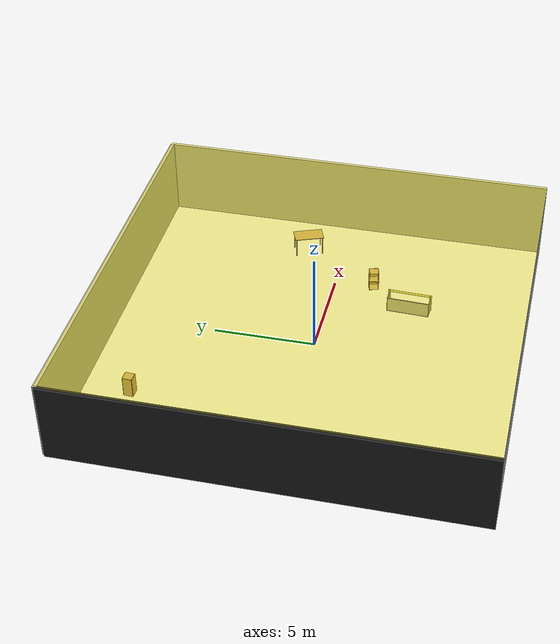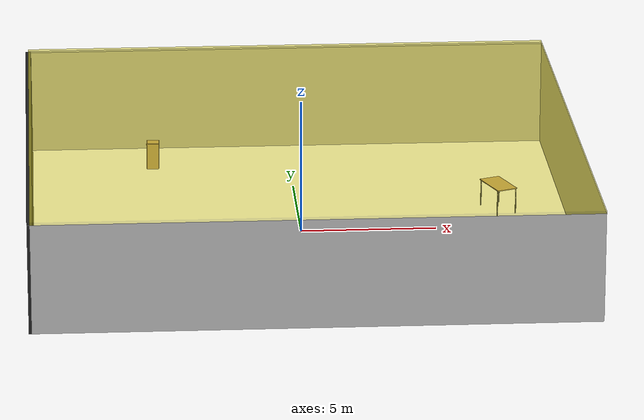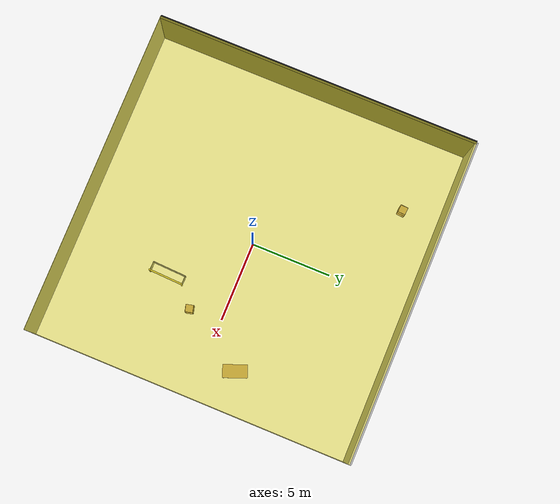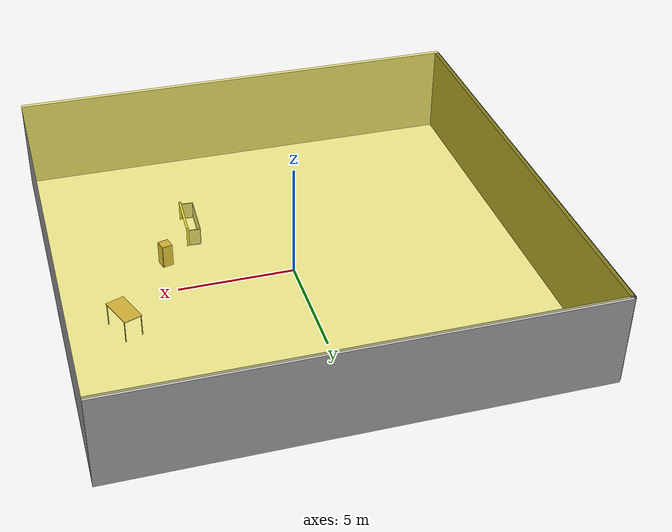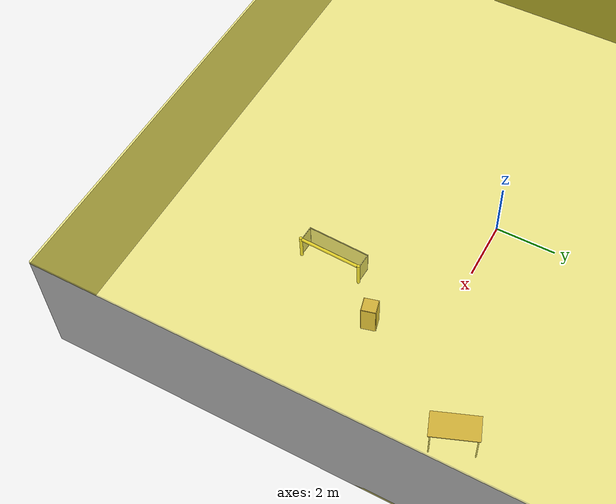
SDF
<sdf version="1.4">
 <world name="default">
  <physics type="ode">
   <max_step_size>0.001</max_step_size>
   <real_time_factor>1</real_time_factor>
   <real_time_update_rate>1000</real_time_update_rate>
   <gravity>0 0 -9.8</gravity>
  </physics>
  <scene><ambient>0.4 0.4 0.4 1</ambient><background>0.7 0.7 0.7 1</background><shadows>1</shadows></scene>
  <model name="Surrounding">
   <static>1</static>
   <link name="Ceiling">
    <collision name="Ceiling_Collision"><geometry><box><size>20 20 0.1</size></box></geometry></collision>
    <visual name="Ceiling_Visual">
     <geometry><box><size>20 20 0.1</size></box></geometry>
     <material>
      <script>
       <uri>file://media/materials/scripts/gazebo.material</uri>
       <name>Gazebo/YellowTransparent</name>
      </script>
     </material>
    </visual>
    <pose>0 0 4.05 0 0 0</pose>
   </link>
   <link name="Wall_South">
    <collision name="Wall_South_Collision">
     <geometry><box><size>20 0 4</size></box></geometry>
     <pose>0 0 2 0 -0 0</pose>
    </collision>
    <visual name="Wall_South_Visual">
     <pose>0 0 2 0 -0 0</pose>
     <geometry><box><size>20 0 4</size></box></geometry>
     <material>
      <script><uri>file://media/materials/scripts/gazebo.material</uri><name>Gazebo/LightOn</name></script>
     </material>
    </visual>
    <velocity_decay><linear>0</linear><angular>0</angular></velocity_decay>
    <pose>0 -10 0 0 -0 0</pose>
   </link>
   <link name="Wall_East">
    <collision name="Wall_21_Collision">
     <geometry><box><size>20 0 4</size></box></geometry>
     <pose>0 0 2 0 -0 0</pose>
    </collision>
    <visual name="Wall_21_Visual">
     <pose>0 0 2 0 -0 0</pose>
     <geometry><box><size>20 0 4</size></box></geometry>
     <material>
      <script><uri>file://media/materials/scripts/gazebo.material</uri><name>Gazebo/LightOff</name></script>
     </material>
    </visual>
    <velocity_decay><linear>0</linear><angular>0</angular></velocity_decay>
    <pose>10 0 0 0 -0 1.5708</pose>
   </link>
   <link name="Wall_North">
    <collision name="Wall_22_Collision">
     <geometry><box><size>20 0.2 4</size></box></geometry>
     <pose>0 0 2 0 -0 0</pose>
    </collision>
    <visual name="Wall_22_Visual">
     <pose>0 0 2 0 -0 0</pose>
     <geometry><box><size>20 0.2 4</size></box></geometry>
     <material>
      <script><uri>file://media/materials/scripts/gazebo.material</uri><name>Gazebo/Pioneer2Body</name></script>
     </material>
    </visual>
    <velocity_decay><linear>0</linear><angular>0</angular></velocity_decay>
    <pose>0 10 0 0 -0 0</pose>
   </link>
   <link name="Wall_West">
    <collision name="Wall_23_Collision">
     <geometry><box><size>20 0.2 4</size></box></geometry>
     <pose>0 0 2 0 -0 0</pose>
    </collision>
    <visual name="Wall_23_Visual">
     <pose>0 0 2 0 -0 0</pose>
     <geometry><box><size>20 0.2 4</size></box></geometry>
     <material>
      <script><uri>file://media/materials/scripts/gazebo.material</uri><name>Gazebo/FlatBlack</name></script>
     </material>
    </visual>
    <velocity_decay><linear>0</linear><angular>0</angular></velocity_decay>
    <pose>-10 0 0 0 0 -1.5708</pose>
   </link>
   <link name="Ground_link">
    <collision name="collision">
     <pose>0 0 .05 0 -0 0</pose>
     <geometry><box><size>20 20 0.1</size></box></geometry>
    </collision>
    <visual name="visual">
     <pose>0 0 .05 0 -0 0</pose>
     <geometry><box><size>20 20 0.1</size></box></geometry>
     <material>
      <script>
       <uri>file://media/materials/scripts/gazebo.material</uri>
       <name>Gazebo/YellowTransparent</name>
      </script>
     </material>
    </visual>
   </link>
   <static>1</static>
  </model>
  <spherical_coordinates>
   <surface_model>EARTH_WGS84</surface_model>
   <latitude_deg>0</latitude_deg>
   <longitude_deg>0</longitude_deg>
   <elevation>0</elevation>
   <heading_deg>0</heading_deg>
  </spherical_coordinates>
  <light name="lightball_0" type="diffuse">
   <diffuse>0.8 0.8 0.8 1</diffuse>
   <specular>0.2 0.2 0.2 1</specular>
   <attenuation>
    <range>100</range>
    <constant>0.7</constant>
    <linear>0.01</linear>
    <quadratic>0.001</quadratic>
   </attenuation>
   <direction>-0.5 0.1 -0.9</direction>
   <pose>-7.53607266806 -2.86923423839 1.67998593111 0 0 0</pose>
  </light>
  <light name="lightball_1" type="diffuse">
   <diffuse>0.8 0.8 0.8 1</diffuse>
   <specular>0.2 0.2 0.2 1</specular>
   <attenuation>
    <range>100</range>
    <constant>0.7</constant>
    <linear>0.01</linear>
    <quadratic>0.001</quadratic>
   </attenuation>
   <direction>-0.5 0.1 -0.9</direction>
   <pose>5.82764236781 -8.11562293672 3.76899380629 0 0 0</pose>
  </light>
  <light name="lightball_2" type="diffuse">
   <diffuse>0.8 0.8 0.8 1</diffuse>
   <specular>0.2 0.2 0.2 1</specular>
   <attenuation>
    <range>100</range>
    <constant>0.7</constant>
    <linear>0.01</linear>
    <quadratic>0.001</quadratic>
   </attenuation>
   <direction>-0.5 0.1 -0.9</direction>
   <pose>-8.65499809501 9.9081635933 0.650746678435 0 0 0</pose>
  </light>
  <light name="lightball_3" type="diffuse">
   <diffuse>0.8 0.8 0.8 1</diffuse>
   <specular>0.2 0.2 0.2 1</specular>
   <attenuation>
    <range>100</range>
    <constant>0.7</constant>
    <linear>0.01</linear>
    <quadratic>0.001</quadratic>
   </attenuation>
   <direction>-0.5 0.1 -0.9</direction>
   <pose>-3.50974893104 7.06541142066 3.44259221274 0 0 0</pose>
  </light>
  <light name="lightball_4" type="diffuse">
   <diffuse>0.8 0.8 0.8 1</diffuse>
   <specular>0.2 0.2 0.2 1</specular>
   <attenuation>
    <range>100</range>
    <constant>0.7</constant>
    <linear>0.01</linear>
    <quadratic>0.001</quadratic>
   </attenuation>
   <direction>-0.5 0.1 -0.9</direction>
   <pose>-4.8761027512 7.85468580437 2.87800294832 0 0 0</pose>
  </light>
  <light name="lightball_5" type="diffuse">
   <diffuse>0.8 0.8 0.8 1</diffuse>
   <specular>0.2 0.2 0.2 1</specular>
   <attenuation>
    <range>100</range>
    <constant>0.7</constant>
    <linear>0.01</linear>
    <quadratic>0.001</quadratic>
   </attenuation>
   <direction>-0.5 0.1 -0.9</direction>
   <pose>-9.66378893258 -6.89584058632 1.63868812953 0 0 0</pose>
  </light>
  <light name="lightball_6" type="diffuse">
   <diffuse>0.8 0.8 0.8 1</diffuse>
   <specular>0.2 0.2 0.2 1</specular>
   <attenuation>
    <range>100</range>
    <constant>0.7</constant>
    <linear>0.01</linear>
    <quadratic>0.001</quadratic>
   </attenuation>
   <direction>-0.5 0.1 -0.9</direction>
   <pose>5.30230322427 1.02939090182 3.31318737647 0 0 0</pose>
  </light>
  <light name="lightball_7" type="diffuse">
   <diffuse>0.8 0.8 0.8 1</diffuse>
   <specular>0.2 0.2 0.2 1</specular>
   <attenuation>
    <range>100</range>
    <constant>0.7</constant>
    <linear>0.01</linear>
    <quadratic>0.001</quadratic>
   </attenuation>
   <direction>-0.5 0.1 -0.9</direction>
   <pose>-2.6663301951 -9.11147647599 2.80429219335 0 0 0</pose>
  </light>
  <light name="lightball_8" type="diffuse">
   <diffuse>0.8 0.8 0.8 1</diffuse>
   <specular>0.2 0.2 0.2 1</specular>
   <attenuation>
    <range>100</range>
    <constant>0.7</constant>
    <linear>0.01</linear>
    <quadratic>0.001</quadratic>
   </attenuation>
   <direction>-0.5 0.1 -0.9</direction>
   <pose>-2.42451663706 2.78979702126 2.22698880281 0 0 0</pose>
  </light>
  <light name="lightball_9" type="diffuse">
   <diffuse>0.8 0.8 0.8 1</diffuse>
   <specular>0.2 0.2 0.2 1</specular>
   <attenuation>
    <range>100</range>
    <constant>0.7</constant>
    <linear>0.01</linear>
    <quadratic>0.001</quadratic>
   </attenuation>
   <direction>-0.5 0.1 -0.9</direction>
   <pose>-6.20457191017 7.38297697391 3.6076538104 0 0 0</pose>
  </light>
  <light name="lightball_10" type="diffuse">
   <diffuse>0.8 0.8 0.8 1</diffuse>
   <specular>0.2 0.2 0.2 1</specular>
   <attenuation>
    <range>100</range>
    <constant>0.7</constant>
    <linear>0.01</linear>
    <quadratic>0.001</quadratic>
   </attenuation>
   <direction>-0.5 0.1 -0.9</direction>
   <pose>-4.56351632506 9.62610810372 2.90523770261 0 0 0</pose>
  </light>
  <light name="lightball_11" type="diffuse">
   <diffuse>0.8 0.8 0.8 1</diffuse>
   <specular>0.2 0.2 0.2 1</specular>
   <attenuation>
    <range>100</range>
    <constant>0.7</constant>
    <linear>0.01</linear>
    <quadratic>0.001</quadratic>
   </attenuation>
   <direction>-0.5 0.1 -0.9</direction>
   <pose>5.49593173498 0.342262881094 2.23530245346 0 0 0</pose>
  </light>
  <light name="lightball_12" type="diffuse">
   <diffuse>0.8 0.8 0.8 1</diffuse>
   <specular>0.2 0.2 0.2 1</specular>
   <attenuation>
    <range>100</range>
    <constant>0.7</constant>
    <linear>0.01</linear>
    <quadratic>0.001</quadratic>
   </attenuation>
   <direction>-0.5 0.1 -0.9</direction>
   <pose>-4.01341982071 -2.88819573479 3.64028172025 0 0 0</pose>
  </light>
  <include><uri>model://cabinet</uri><pose>-5.26373339918 7.62064961238 0 0 0 3.08076907863</pose></include>
  <include>
   <uri>model://robocup_3Dsim_goal</uri>
   <pose>3.90930455542 -4.05191004719 0 0 0 3.10035668821</pose>
  </include>
  <include><uri>model://cabinet</uri><pose>5.12061019023 -1.98386823475 0 0 0 0.25243485065</pose></include>
  <include><uri>model://table</uri><pose>7.52492542993 1.96205086271 0 0 0 1.93900607488</pose></include>
 </world>
</sdf>

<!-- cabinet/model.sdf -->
<sdf version="1.5">
  <model name="cabinet">
    <static>true</static>
    <link name="cabinet_bottom_plate">
      <inertial>
        <pose>0 0 -1 0 0 0</pose>
        <inertia>
          <ixx>2.050000</ixx>
          <ixy>0</ixy>
          <ixz>0</ixz>
          <iyy>2.050000</iyy>
          <iyz>0</iyz>
          <izz>2.050000</izz>
        </inertia>
        <mass>25.000000</mass>
      </inertial>
      <collision name="cabinet_bottom_plate_geom">
        <pose>0 0 0.010000 0 0 0</pose>
        <geometry>
          <box>
            <size>0.450000 0.450000 0.020000</size>
          </box>
        </geometry>
      </collision>
      <visual name="cabinet_bottom_plate_geom_visual">
        <pose>0 0 0.010000 0 0 0</pose>
        <geometry>
          <box>
            <size>0.450000 0.450000 0.020000</size>
          </box>
        </geometry>
        <material>
          <script>
            <uri>model://media/materials/scripts/gazebo.material</uri>
            <name>Gazebo/Wood</name>
          </script>
        </material>
      </visual>
      <collision name="cabinet_bottom_plate_geom_cabinet_back_plate">
        <pose>0.235000 0 0.510000 0 0 0</pose>
        <geometry>
          <box>
            <size>0.020000 0.450000 1.020000</size>
          </box>
        </geometry>
      </collision>
      <visual name="cabinet_bottom_plate_geom_cabinet_back_plate_visual">
        <pose>0.235000 0 0.510000 0 0 0</pose>
        <geometry>
          <box>
            <size>0.020000 0.450000 1.020000</size>
          </box>
        </geometry>
        <material>
          <script>
            <uri>model://media/materials/scripts/gazebo.material</uri>
            <name>Gazebo/Wood</name>
          </script>
        </material>
      </visual>
      <collision name="cabinet_bottom_plate_geom_cabinet_left_plate">
        <pose>0 0.235000 0.510000 0 0 0</pose>
        <geometry>
          <box>
            <size>0.450000 0.020000 1.020000</size>
          </box>
        </geometry>
      </collision>
      <visual name="cabinet_bottom_plate_geom_cabinet_left_plate_visual">
        <pose>0 0.235000 0.510000 0 0 0</pose>
        <geometry>
          <box>
            <size>0.450000 0.020000 1.020000</size>
          </box>
        </geometry>
        <material>
          <script>
            <uri>model://media/materials/scripts/gazebo.material</uri>
            <name>Gazebo/Wood</name>
          </script>
        </material>
      </visual>
      <collision name="cabinet_bottom_plate_geom_cabinet_middle_plate">
        <pose>0 0 0.510000 0 0 0</pose>
        <geometry>
          <box>
            <size>0.450000 0.450000 0.020000</size>
          </box>
        </geometry>
      </collision>
      <visual name="cabinet_bottom_plate_geom_cabinet_middle_plate_visual">
        <pose>0 0 0.510000 0 0 0</pose>
        <geometry>
          <box>
            <size>0.450000 0.450000 0.020000</size>
          </box>
        </geometry>
        <material>
          <script>
            <uri>model://media/materials/scripts/gazebo.material</uri>
            <name>Gazebo/Wood</name>
          </script>
        </material>
      </visual>
      <collision name="cabinet_bottom_plate_geom_cabinet_right_plate">
        <pose>0 -0.235000 0.510000 0 0 0</pose>
        <geometry>
          <box>
            <size>0.450000 0.020000 1.020000</size>
          </box>
        </geometry>
      </collision>
      <visual name="cabinet_bottom_plate_geom_cabinet_right_plate_visual">
        <pose>0 -0.235000 0.510000 0 0 0</pose>
        <geometry>
          <box>
            <size>0.450000 0.020000 1.020000</size>
          </box>
        </geometry>
        <material>
          <script>
            <uri>model://media/materials/scripts/gazebo.material</uri>
            <name>Gazebo/Wood</name>
          </script>
        </material>
      </visual>
      <collision name="cabinet_bottom_plate_geom_cabinet_top_plate">
        <pose>0 0 1.010000 0 0 0</pose>
        <geometry>
          <box>
            <size>0.450000 0.450000 0.020000</size>
          </box>
        </geometry>
      </collision>
      <visual name="cabinet_bottom_plate_geom_cabinet_top_plate_visual">
        <pose>0 0 1.010000 0 0 0</pose>
        <geometry>
          <box>
            <size>0.450000 0.450000 0.020000</size>
          </box>
        </geometry>
        <material>
          <script>
            <uri>model://media/materials/scripts/gazebo.material</uri>
            <name>Gazebo/Wood</name>
          </script>
        </material>
      </visual>
    </link>
  </model>
</sdf>

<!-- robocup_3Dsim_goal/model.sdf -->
<sdf version="1.5">
  <model name="robocup_3d_goal">
    <static>true</static>
    <link name="left_post">
      <pose>0 1.05 0.45 0 0 0</pose>
      <collision name="collision">
        <geometry>
          <cylinder>
            <radius>0.05</radius>
            <length>0.9</length>
          </cylinder>
        </geometry>
      </collision>
      <visual name="visual">
        <geometry>
          <cylinder>
            <radius>0.05</radius>
            <length>0.9</length>
          </cylinder>
        </geometry>
        <material>
          <script>
            <uri>file://media/materials/scripts/gazebo.material</uri>
            <name>Gazebo/ZincYellow</name>
          </script>
        </material>
      </visual>
    </link>
    <link name="left_support_horiz_lower">
      <pose>0.30 1.05 0.01 0 0 0</pose>
      <collision name="collision">
        <geometry>
          <box>
            <size>0.50 0.02 0.02</size>
          </box>
        </geometry>
      </collision>
      <visual name="visual">
        <geometry>
          <box>
            <size>0.50 0.02 0.02</size>
          </box>
        </geometry>
        <material>
          <script>
            <uri>file://media/materials/scripts/gazebo.material</uri>
            <name>Gazebo/White</name>
          </script>
        </material>
      </visual>
    </link>
    <link name="left_support_horiz_upper">
      <pose>0.30 1.05 0.79 0 0 0</pose>
      <collision name="collision">
        <geometry>
          <box>
            <size>0.50 0.02 0.02</size>
          </box>
        </geometry>
      </collision>
      <visual name="visual">
        <geometry>
          <box>
            <size>0.50 0.02 0.02</size>
          </box>
        </geometry>
        <material>
          <script>
            <uri>file://media/materials/scripts/gazebo.material</uri>
            <name>Gazebo/White</name>
          </script>
        </material>
      </visual>
    </link>
    <link name="left_support_vertical">
      <pose>0.56 1.05 0.4 0 1.5708 0</pose>
      <collision name="collision">
        <geometry>
          <box>
            <size>0.80 0.02 0.02</size>
          </box>
        </geometry>
      </collision>
      <visual name="visual">
        <geometry>
          <box>
            <size>0.80 0.02 0.02</size>
          </box>
        </geometry>
        <material>
          <script>
            <uri>file://media/materials/scripts/gazebo.material</uri>
            <name>Gazebo/White</name>
          </script>
        </material>
      </visual>
    </link>
    <link name="right_support_horiz_lower">
      <pose>0.30 -1.05 0.01 0 0 0</pose>
      <collision name="collision">
        <geometry>
          <box>
            <size>0.50 0.02 0.02</size>
          </box>
        </geometry>
      </collision>
      <visual name="visual">
        <geometry>
          <box>
            <size>0.50 0.02 0.02</size>
          </box>
        </geometry>
        <material>
          <script>
            <uri>file://media/materials/scripts/gazebo.material</uri>
            <name>Gazebo/White</name>
          </script>
        </material>
      </visual>
    </link>
    <link name="right_support_horiz_upper">
      <pose>0.30 -1.05 0.79 0 0 0</pose>
      <collision name="collision">
        <geometry>
          <box>
            <size>0.50 0.02 0.02</size>
          </box>
        </geometry>
      </collision>
      <visual name="visual">
        <geometry>
          <box>
            <size>0.50 0.02 0.02</size>
          </box>
        </geometry>
        <material>
          <script>
            <uri>file://media/materials/scripts/gazebo.material</uri>
            <name>Gazebo/White</name>
          </script>
        </material>
      </visual>
    </link>
    <link name="right_support_vertical">
      <pose>0.56 -1.05 0.4 0 1.5708 0</pose>
      <collision name="collision">
        <geometry>
          <box>
            <size>0.80 0.02 0.02</size>
          </box>
        </geometry>
      </collision>
      <visual name="visual">
        <geometry>
          <box>
            <size>0.80 0.02 0.02</size>
          </box>
        </geometry>
        <material>
          <script>
            <uri>file://media/materials/scripts/gazebo.material</uri>
            <name>Gazebo/White</name>
          </script>
        </material>
      </visual>
    </link>
    <link name="center_support_horiz_lower">
      <pose>0.56 0 0.01 0 1.5708 0</pose>
      <collision name="collision">
        <geometry>
          <box>
            <size>0.02 2.08 0.02</size>
          </box>
        </geometry>
      </collision>
      <visual name="visual">
        <geometry>
          <box>
            <size>0.02 2.08 0.02</size>
          </box>
        </geometry>
        <material>
          <script>
            <uri>file://media/materials/scripts/gazebo.material</uri>
            <name>Gazebo/White</name>
          </script>
        </material>
      </visual>
    </link>
    <link name="center_support_horiz_upper">
      <pose>0.56 0 0.79 0 1.5708 0</pose>
      <collision name="collision">
        <geometry>
          <box>
            <size>0.02 2.08 0.02</size>
          </box>
        </geometry>
      </collision>
      <visual name="visual">
        <geometry>
          <box>
            <size>0.02 2.08 0.02</size>
          </box>
        </geometry>
        <material>
          <script>
            <uri>file://media/materials/scripts/gazebo.material</uri>
            <name>Gazebo/White</name>
          </script>
        </material>
      </visual>
    </link>
    <link name="right_post">
      <pose>0 -1.05 0.45 0 0 0</pose>
      <collision name="collision">
        <geometry>
          <cylinder>
            <radius>0.05</radius>
            <length>0.9</length>
          </cylinder>
        </geometry>
      </collision>
      <visual name="visual">
        <geometry>
          <cylinder>
            <radius>0.05</radius>
            <length>0.9</length>
          </cylinder>
        </geometry>
        <material>
          <script>
            <uri>file://media/materials/scripts/gazebo.material</uri>
            <name>Gazebo/ZincYellow</name>
          </script>
        </material>
      </visual>
    </link>
    <link name="crossbar">
      <pose>0 0 0.85 1.57 1.57 0</pose>
      <collision name="collision">
        <geometry>
          <cylinder>
            <radius>0.05</radius>
            <length>2.0</length>
          </cylinder>
        </geometry>
      </collision>
      <visual name="visual">
        <geometry>
          <cylinder>
            <radius>0.05</radius>
            <length>2.0</length>
          </cylinder>
        </geometry>
        <material>
          <script>
            <uri>file://media/materials/scripts/gazebo.material</uri>
            <name>Gazebo/ZincYellow</name>
          </script>
        </material>
      </visual>
    </link>
    <link name="center_net">
      <pose>0.56 0 0.40 0 0 0</pose>
      <collision name="collision">
        <geometry>
          <box>
            <size>0.01 2.1 0.80</size>
          </box>
        </geometry>
      </collision>
      <visual name="visual">
        <geometry>
          <box>
            <size>0.01 2.1 0.80</size>
          </box>
        </geometry>
        <material>
          <script>
            <uri>model://../model_source/models/robocup09_spl_field/materials/scripts/</uri>
            <uri>model://../model_source/models/robocup09_spl_field/materials/textures/</uri>
            <name>RoboCup/Net</name>
          </script>
        </material>
      </visual>
    </link>
    <link name="left_net">
      <pose>0.30 1.05 0.40 0 0 0</pose>
      <collision name="collision">
        <geometry>
          <box>
            <size>0.50 0.01 0.76</size>
          </box>
        </geometry>
      </collision>
      <visual name="visual">
        <geometry>
          <box>
            <size>0.50 0.01 0.76</size>
          </box>
        </geometry>
        <material>
          <script>
            <uri>model://../model_source/models/robocup09_spl_field/materials/scripts/</uri>
            <uri>model://../model_source/models/robocup09_spl_field/materials/textures/</uri>
            <name>RoboCup/Net</name>
          </script>
        </material>
      </visual>
    </link>
    <link name="right_net">
      <pose>0.30 -1.05 0.40 0 0 0</pose>
      <collision name="collision">
        <geometry>
          <box>
            <size>0.50 0.01 0.76</size>
          </box>
        </geometry>
      </collision>
      <visual name="visual">
        <geometry>
          <box>
            <size>0.50 0.01 0.76</size>
          </box>
        </geometry>
        <material>
          <script>
            <uri>model://../model_source/models/robocup09_spl_field/materials/scripts/</uri>
            <uri>model://../model_source/models/robocup09_spl_field/materials/textures/</uri>
            <name>RoboCup/Net</name>
          </script>
        </material>
      </visual>
    </link>
  </model>
</sdf>

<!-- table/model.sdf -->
<sdf version="1.5">
  <model name="table">
    <static>true</static>
    <link name="link">
      <collision name="surface">
        <pose>0 0 1.0 0 0 0</pose>
        <geometry>
          <box>
            <size>1.5 0.8 0.03</size>
          </box>
        </geometry>
        <surface>
          <friction>
            <ode>
              <mu>0.6</mu>
              <mu2>0.6</mu2>
            </ode>
          </friction>
        </surface>
      </collision>
      <visual name="visual1">
        <pose>0 0 1.0 0 0 0</pose>
        <geometry>
          <box>
            <size>1.5 0.8 0.03</size>
          </box>
        </geometry>
        <material>
          <script>
            <uri>model://media/materials/scripts/gazebo.material</uri>
            <name>Gazebo/Wood</name>
          </script>
        </material>
      </visual>
      <collision name="front_left_leg">
        <pose>0.68 0.38 0.5 0 0 0</pose>
        <geometry>
          <cylinder>
            <radius>0.02</radius>
            <length>1.0</length>
          </cylinder>
        </geometry>
      </collision>
      <visual name="front_left_leg">
        <pose>0.68 0.38 0.5 0 0 0</pose>
        <geometry>
          <cylinder>
            <radius>0.02</radius>
            <length>1.0</length>
          </cylinder>
        </geometry>
        <material>
          <script>
            <uri>model://media/materials/scripts/gazebo.material</uri>
            <name>Gazebo/Grey</name>
          </script>
        </material>
      </visual>
      <collision name="front_right_leg">
        <pose>0.68 -0.38 0.5 0 0 0</pose>
        <geometry>
          <cylinder>
            <radius>0.02</radius>
            <length>1.0</length>
          </cylinder>
        </geometry>
      </collision>
      <visual name="front_right_leg">
        <pose>0.68 -0.38 0.5 0 0 0</pose>
        <geometry>
          <cylinder>
            <radius>0.02</radius>
            <length>1.0</length>
          </cylinder>
        </geometry>
        <material>
          <script>
            <uri>model://media/materials/scripts/gazebo.material</uri>
            <name>Gazebo/Grey</name>
          </script>
        </material>
      </visual>
      <collision name="back_right_leg">
        <pose>-0.68 -0.38 0.5 0 0 0</pose>
        <geometry>
          <cylinder>
            <radius>0.02</radius>
            <length>1.0</length>
          </cylinder>
        </geometry>
      </collision>
      <visual name="back_right_leg">
        <pose>-0.68 -0.38 0.5 0 0 0</pose>
        <geometry>
          <cylinder>
            <radius>0.02</radius>
            <length>1.0</length>
          </cylinder>
        </geometry>
        <material>
          <script>
            <uri>model://media/materials/scripts/gazebo.material</uri>
            <name>Gazebo/Grey</name>
          </script>
        </material>
      </visual>
      <collision name="back_left_leg">
        <pose>-0.68 0.38 0.5 0 0 0</pose>
        <geometry>
          <cylinder>
            <radius>0.02</radius>
            <length>1.0</length>
          </cylinder>
        </geometry>
      </collision>
      <visual name="back_left_leg">
        <pose>-0.68 0.38 0.5 0 0 0</pose>
        <geometry>
          <cylinder>
            <radius>0.02</radius>
            <length>1.0</length>
          </cylinder>
        </geometry>
        <material>
          <script>
            <uri>model://media/materials/scripts/gazebo.material</uri>
            <name>Gazebo/Grey</name>
          </script>
        </material>
      </visual>
    </link>
  </model>
</sdf>
